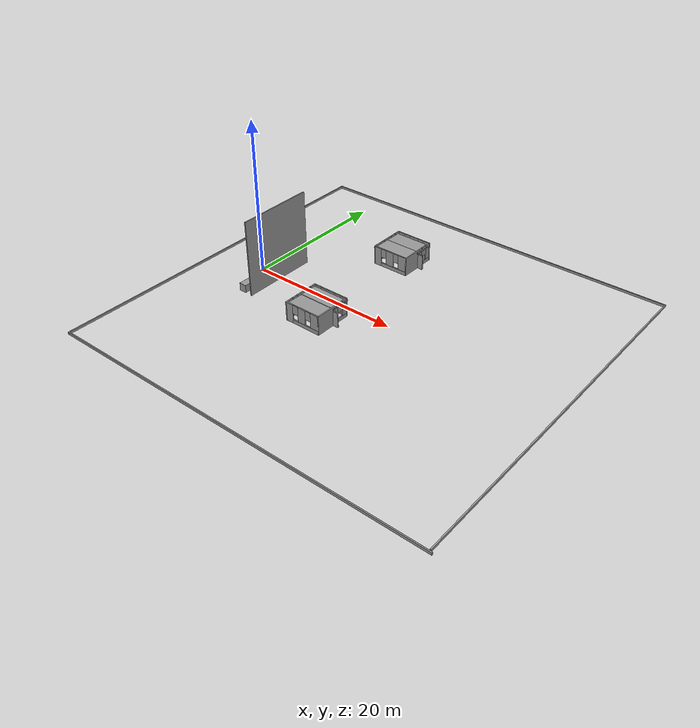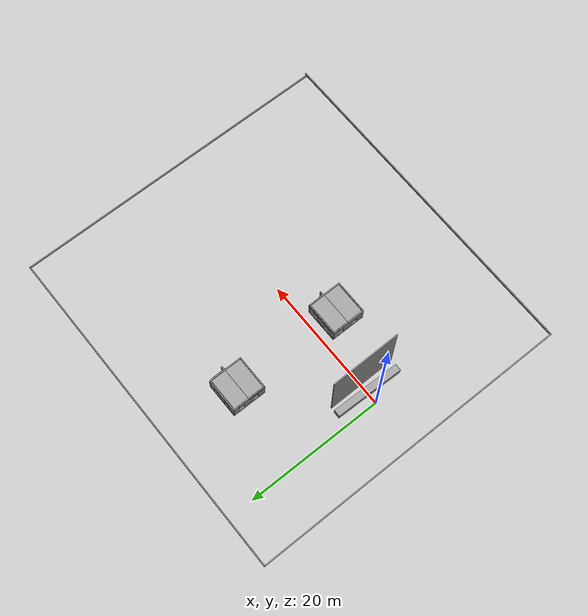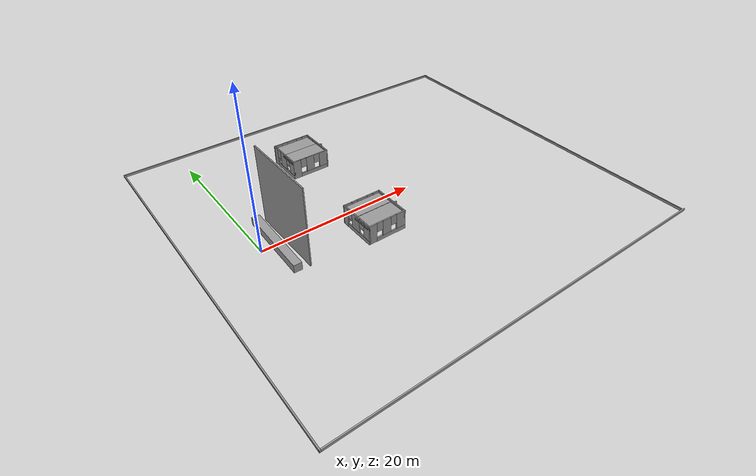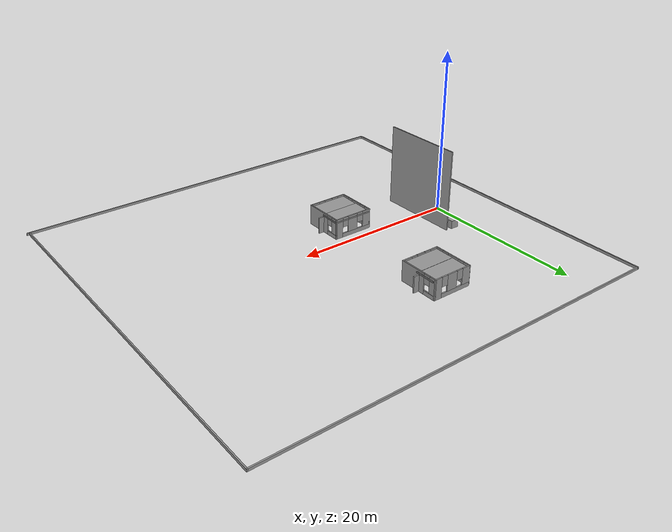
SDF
<sdf version="1.7">
 <world name="default">
  <model name="ground_plane">
   <static>1</static>
   <link name="link">
    <collision name="collision">
     <geometry><plane><normal>0 0 1</normal><size>5000 5000</size></plane></geometry>
     <surface><friction><ode><mu>100</mu><mu2>50</mu2></ode></friction></surface>
    </collision>
   </link>
  </model>
  <model name="wall50m">
   <pose>17.9974 0.0206 0 0 -0 0</pose>
   <link name="Wall_4">
    <collision name="Wall_4_Collision">
     <geometry><box><size>50.5 0.15 0.3</size></box></geometry>
     <pose>0 0 0.15 0 -0 0</pose>
    </collision>
    <visual name="Wall_4_Visual">
     <pose>0 0 0.15 0 -0 0</pose>
     <geometry><box><size>50.5 0.15 0.3</size></box></geometry>
     <material>
      <script><uri>file://media/materials/scripts/gazebo.material</uri><name>Gazebo/Grey</name></script>
      <ambient>1 1 1 1</ambient>
     </material>
     <meta><layer>0</layer></meta>
    </visual>
    <pose>2e-06 -23.675 0 0 -0 3.14159</pose>
   </link>
   <link name="Wall_5">
    <collision name="Wall_5_Collision">
     <geometry><box><size>47.5 0.15 0.3</size></box></geometry>
     <pose>0 0 0.15 0 -0 0</pose>
    </collision>
    <visual name="Wall_5_Visual">
     <pose>0 0 0.15 0 -0 0</pose>
     <geometry><box><size>47.5 0.15 0.3</size></box></geometry>
     <material>
      <script><uri>file://media/materials/scripts/gazebo.material</uri><name>Gazebo/Grey</name></script>
      <ambient>1 1 1 1</ambient>
     </material>
     <meta><layer>0</layer></meta>
    </visual>
    <pose>-25.175 -0 0 0 -0 1.5708</pose>
   </link>
   <link name="Wall_6">
    <collision name="Wall_6_Collision">
     <geometry><box><size>50.25 0.15 0.3</size></box></geometry>
     <pose>0 0 0.15 0 -0 0</pose>
    </collision>
    <visual name="Wall_6_Visual">
     <pose>0 0 0.15 0 -0 0</pose>
     <geometry><box><size>50.25 0.15 0.3</size></box></geometry>
     <material>
      <script><uri>file://media/materials/scripts/gazebo.material</uri><name>Gazebo/Grey</name></script>
      <ambient>1 1 1 1</ambient>
     </material>
     <meta><layer>0</layer></meta>
    </visual>
    <pose>-0.124998 23.675 0 0 -0 0</pose>
   </link>
   <link name="Wall_7">
    <collision name="Wall_7_Collision">
     <geometry><box><size>47.25 0.15 0.3</size></box></geometry>
     <pose>0 0 0.15 0 -0 0</pose>
    </collision>
    <visual name="Wall_7_Visual">
     <pose>0 0 0.15 0 -0 0</pose>
     <geometry><box><size>47.25 0.15 0.3</size></box></geometry>
     <material>
      <script><uri>file://media/materials/scripts/gazebo.material</uri><name>Gazebo/Grey</name></script>
      <ambient>1 1 1 1</ambient>
     </material>
     <meta><layer>0</layer></meta>
    </visual>
    <pose>24.925 0.125 0 0 -0 -1.5708</pose>
   </link>
   <static>1</static>
  </model>
  <model name="wall10m">
   <pose>3.10185 -0.181993 0 0 0 -1.56343</pose>
   <link name="Wall_0">
    <collision name="Wall_0_Collision">
     <geometry><box><size>10 0.15 10</size></box></geometry>
     <pose>0 0 5 0 -0 0</pose>
    </collision>
    <visual name="Wall_0_Visual">
     <pose>0 0 5 0 -0 0</pose>
     <geometry><box><size>10 0.15 10</size></box></geometry>
     <material>
      <script><uri>file://media/materials/scripts/gazebo.material</uri><name>Gazebo/Grey</name></script>
      <ambient>1 1 1 1</ambient>
     </material>
     <meta><layer>0</layer></meta>
    </visual>
   </link>
   <static>1</static>
  </model>
  <model name="Pacel_stand">
   <link name="link">
    <inertial>
     <mass>18.9585</mass>
     <inertia><ixx>3.15974</ixx><ixy>0</ixy><ixz>0</ixz><iyy>569.422</iyy><iyz>0</iyz><izz>569.422</izz></inertia>
    </inertial>
    <pose>4.44827 0.008738 0 0 -0 0</pose>
    <visual name="visual">
     <geometry><box><size>10 1 1</size></box></geometry>
     <material>
      <script><name>Gazebo/Grey</name><uri>file://media/materials/scripts/gazebo.material</uri></script>
      <shader type="vertex"><normal_map>__default__</normal_map></shader>
      <ambient>0.3 0.3 0.3 1</ambient>
      <diffuse>0.7 0.7 0.7 1</diffuse>
      <specular>0.01 0.01 0.01 1</specular>
      <emissive>0 0 0 1</emissive>
     </material>
    </visual>
    <collision name="collision">
     <geometry><box><size>9.99997 1 1</size></box></geometry>
     <surface>
      <friction>
       <ode><mu>1</mu><mu2>1</mu2><fdir1>0 0 0</fdir1><slip1>0</slip1><slip2>0</slip2></ode>
       <torsional>
        <coefficient>1</coefficient>
        <patch_radius>0</patch_radius>
        <surface_radius>0</surface_radius>
        <use_patch_radius>1</use_patch_radius>
        <ode><slip>0</slip></ode>
       </torsional>
      </friction>
      <bounce><restitution_coefficient>0</restitution_coefficient><threshold>1e+06</threshold></bounce>
      <contact>
       <collide_without_contact>0</collide_without_contact>
       <collide_without_contact_bitmask>1</collide_without_contact_bitmask>
       <collide_bitmask>1</collide_bitmask>
       <ode>
        <soft_cfm>0</soft_cfm>
        <soft_erp>0.2</soft_erp>
        <kp>1e+13</kp>
        <kd>1</kd>
        <max_vel>0.01</max_vel>
        <min_depth>0</min_depth>
       </ode>
       <bullet>
        <split_impulse>1</split_impulse>
        <split_impulse_penetration_threshold>-0.01</split_impulse_penetration_threshold>
        <soft_cfm>0</soft_cfm>
        <soft_erp>0.2</soft_erp>
        <kp>1e+13</kp>
        <kd>1</kd>
       </bullet>
      </contact>
     </surface>
    </collision>
   </link>
   <static>0</static>
   <pose>1.87633 4.35864 0.5 0 0 -1.592</pose>
  </model>
  <model name="House">
   <pose>12.4099 12.5509 0 0 -0 0</pose>
   <link name="Door_0">
    <collision name="Door_0_Collision">
     <geometry><box><size>0.9 0.17 2</size></box></geometry>
     <pose>0 0 1 0 -0 0</pose>
    </collision>
    <visual name="Door_0_Visual">
     <pose>0 0 1 0 -0 0</pose>
     <geometry><box><size>0.9 0.17 2</size></box></geometry>
     <material>
      <script><uri>file://media/materials/scripts/gazebo.material</uri><name>Gazebo/Grey</name></script>
     </material>
    </visual>
    <pose>2.72267 0.051323 0 0 -0 0</pose>
   </link>
   <link name="Wall_2">
    <pose>0 2.425 0 0 -0 3.14159</pose>
    <visual name="Wall_2_Visual_0">
     <pose>-2.01333 0 1.25 0 -0 0</pose>
     <geometry><box><size>0.973339 0.15 2.5</size></box></geometry>
     <material>
      <script><uri>file://media/materials/scripts/gazebo.material</uri><name>Gazebo/Grey</name></script>
      <ambient>1 1 1 1</ambient>
     </material>
     <meta><layer>0</layer></meta>
    </visual>
    <collision name="Wall_2_Collision_0">
     <geometry><box><size>0.973339 0.15 2.5</size></box></geometry>
     <pose>-2.01333 0 1.25 0 -0 0</pose>
    </collision>
    <visual name="Wall_2_Visual_1">
     <pose>0.48667 0 0.25 0 -0 0</pose>
     <geometry><box><size>4.02666 0.15 0.5</size></box></geometry>
     <material>
      <script><uri>file://media/materials/scripts/gazebo.material</uri><name>Gazebo/Grey</name></script>
      <ambient>1 1 1 1</ambient>
     </material>
     <meta><layer>0</layer></meta>
    </visual>
    <collision name="Wall_2_Collision_1">
     <geometry><box><size>4.02666 0.15 0.5</size></box></geometry>
     <pose>0.48667 0 0.25 0 -0 0</pose>
    </collision>
    <visual name="Wall_2_Visual_2">
     <pose>-0.062653 0 1.5 0 -0 0</pose>
     <geometry><box><size>1.32802 0.15 2</size></box></geometry>
     <material>
      <script><uri>file://media/materials/scripts/gazebo.material</uri><name>Gazebo/Grey</name></script>
      <ambient>1 1 1 1</ambient>
     </material>
     <meta><layer>0</layer></meta>
    </visual>
    <collision name="Wall_2_Collision_2">
     <geometry><box><size>1.32802 0.15 2</size></box></geometry>
     <pose>-0.062653 0 1.5 0 -0 0</pose>
    </collision>
    <visual name="Wall_2_Visual_3">
     <pose>1.95068 0 1.5 0 -0 0</pose>
     <geometry><box><size>1.09865 0.15 2</size></box></geometry>
     <material>
      <script><uri>file://media/materials/scripts/gazebo.material</uri><name>Gazebo/Grey</name></script>
      <ambient>1 1 1 1</ambient>
     </material>
     <meta><layer>0</layer></meta>
    </visual>
    <collision name="Wall_2_Collision_3">
     <geometry><box><size>1.09865 0.15 2</size></box></geometry>
     <pose>1.95068 0 1.5 0 -0 0</pose>
    </collision>
    <visual name="Wall_2_Visual_4">
     <pose>-1.12666 0 1.9 0 -0 0</pose>
     <geometry><box><size>0.8 0.15 1.2</size></box></geometry>
     <material>
      <script><uri>file://media/materials/scripts/gazebo.material</uri><name>Gazebo/Grey</name></script>
      <ambient>1 1 1 1</ambient>
     </material>
     <meta><layer>0</layer></meta>
    </visual>
    <collision name="Wall_2_Collision_4">
     <geometry><box><size>0.8 0.15 1.2</size></box></geometry>
     <pose>-1.12666 0 1.9 0 -0 0</pose>
    </collision>
    <visual name="Wall_2_Visual_5">
     <pose>1.00135 0 1.9 0 -0 0</pose>
     <geometry><box><size>0.8 0.15 1.2</size></box></geometry>
     <material>
      <script><uri>file://media/materials/scripts/gazebo.material</uri><name>Gazebo/Grey</name></script>
      <ambient>1 1 1 1</ambient>
     </material>
     <meta><layer>0</layer></meta>
    </visual>
    <collision name="Wall_2_Collision_5">
     <geometry><box><size>0.8 0.15 1.2</size></box></geometry>
     <pose>1.00135 0 1.9 0 -0 0</pose>
    </collision>
   </link>
   <link name="Wall_3">
    <pose>-2.425 0 0 0 -0 -1.5708</pose>
    <visual name="Wall_3_Visual_0">
     <pose>-2.06087 0 1.25 0 -0 0</pose>
     <geometry><box><size>0.878268 0.15 2.5</size></box></geometry>
     <material>
      <script><uri>file://media/materials/scripts/gazebo.material</uri><name>Gazebo/Grey</name></script>
      <ambient>1 1 1 1</ambient>
     </material>
     <meta><layer>0</layer></meta>
    </visual>
    <collision name="Wall_3_Collision_0">
     <geometry><box><size>0.878268 0.15 2.5</size></box></geometry>
     <pose>-2.06087 0 1.25 0 -0 0</pose>
    </collision>
    <visual name="Wall_3_Visual_1">
     <pose>0.439134 0 0.25 0 -0 0</pose>
     <geometry><box><size>4.12173 0.15 0.5</size></box></geometry>
     <material>
      <script><uri>file://media/materials/scripts/gazebo.material</uri><name>Gazebo/Grey</name></script>
      <ambient>1 1 1 1</ambient>
     </material>
     <meta><layer>0</layer></meta>
    </visual>
    <collision name="Wall_3_Collision_1">
     <geometry><box><size>4.12173 0.15 0.5</size></box></geometry>
     <pose>0.439134 0 0.25 0 -0 0</pose>
    </collision>
    <visual name="Wall_3_Visual_2">
     <pose>-0.091224 0 1.5 0 -0 0</pose>
     <geometry><box><size>1.46102 0.15 2</size></box></geometry>
     <material>
      <script><uri>file://media/materials/scripts/gazebo.material</uri><name>Gazebo/Grey</name></script>
      <ambient>1 1 1 1</ambient>
     </material>
     <meta><layer>0</layer></meta>
    </visual>
    <collision name="Wall_3_Collision_2">
     <geometry><box><size>1.46102 0.15 2</size></box></geometry>
     <pose>-0.091224 0 1.5 0 -0 0</pose>
    </collision>
    <visual name="Wall_3_Visual_3">
     <pose>1.96964 0 1.5 0 -0 0</pose>
     <geometry><box><size>1.06072 0.15 2</size></box></geometry>
     <material>
      <script><uri>file://media/materials/scripts/gazebo.material</uri><name>Gazebo/Grey</name></script>
      <ambient>1 1 1 1</ambient>
     </material>
     <meta><layer>0</layer></meta>
    </visual>
    <collision name="Wall_3_Collision_3">
     <geometry><box><size>1.06072 0.15 2</size></box></geometry>
     <pose>1.96964 0 1.5 0 -0 0</pose>
    </collision>
    <visual name="Wall_3_Visual_4">
     <pose>-1.22173 0 1.9 0 -0 0</pose>
     <geometry><box><size>0.8 0.15 1.2</size></box></geometry>
     <material>
      <script><uri>file://media/materials/scripts/gazebo.material</uri><name>Gazebo/Grey</name></script>
      <ambient>1 1 1 1</ambient>
     </material>
     <meta><layer>0</layer></meta>
    </visual>
    <collision name="Wall_3_Collision_4">
     <geometry><box><size>0.8 0.15 1.2</size></box></geometry>
     <pose>-1.22173 0 1.9 0 -0 0</pose>
    </collision>
    <visual name="Wall_3_Visual_5">
     <pose>1.03929 0 1.9 0 -0 0</pose>
     <geometry><box><size>0.8 0.15 1.2</size></box></geometry>
     <material>
      <script><uri>file://media/materials/scripts/gazebo.material</uri><name>Gazebo/Grey</name></script>
      <ambient>1 1 1 1</ambient>
     </material>
     <meta><layer>0</layer></meta>
    </visual>
    <collision name="Wall_3_Collision_5">
     <geometry><box><size>0.8 0.15 1.2</size></box></geometry>
     <pose>1.03929 0 1.9 0 -0 0</pose>
    </collision>
   </link>
   <link name="Wall_4">
    <pose>0 -2.425 0 0 -0 0</pose>
    <visual name="Wall_4_Visual_0">
     <pose>-1.96398 0 1.25 0 -0 0</pose>
     <geometry><box><size>1.07204 0.15 2.5</size></box></geometry>
     <material>
      <script><uri>file://media/materials/scripts/gazebo.material</uri><name>Gazebo/Grey</name></script>
      <ambient>1 1 1 1</ambient>
     </material>
     <meta><layer>0</layer></meta>
    </visual>
    <collision name="Wall_4_Collision_0">
     <geometry><box><size>1.07204 0.15 2.5</size></box></geometry>
     <pose>-1.96398 0 1.25 0 -0 0</pose>
    </collision>
    <visual name="Wall_4_Visual_1">
     <pose>0.536022 0 0.25 0 -0 0</pose>
     <geometry><box><size>3.92796 0.15 0.5</size></box></geometry>
     <material>
      <script><uri>file://media/materials/scripts/gazebo.material</uri><name>Gazebo/Grey</name></script>
      <ambient>1 1 1 1</ambient>
     </material>
     <meta><layer>0</layer></meta>
    </visual>
    <collision name="Wall_4_Collision_1">
     <geometry><box><size>3.92796 0.15 0.5</size></box></geometry>
     <pose>0.536022 0 0.25 0 -0 0</pose>
    </collision>
    <visual name="Wall_4_Visual_2">
     <pose>-0.083648 0 1.5 0 -0 0</pose>
     <geometry><box><size>1.08861 0.15 2</size></box></geometry>
     <material>
      <script><uri>file://media/materials/scripts/gazebo.material</uri><name>Gazebo/Grey</name></script>
      <ambient>1 1 1 1</ambient>
     </material>
     <meta><layer>0</layer></meta>
    </visual>
    <collision name="Wall_4_Collision_2">
     <geometry><box><size>1.08861 0.15 2</size></box></geometry>
     <pose>-0.083648 0 1.5 0 -0 0</pose>
    </collision>
    <visual name="Wall_4_Visual_3">
     <pose>1.88033 0 1.5 0 -0 0</pose>
     <geometry><box><size>1.23934 0.15 2</size></box></geometry>
     <material>
      <script><uri>file://media/materials/scripts/gazebo.material</uri><name>Gazebo/Grey</name></script>
      <ambient>1 1 1 1</ambient>
     </material>
     <meta><layer>0</layer></meta>
    </visual>
    <collision name="Wall_4_Collision_3">
     <geometry><box><size>1.23934 0.15 2</size></box></geometry>
     <pose>1.88033 0 1.5 0 -0 0</pose>
    </collision>
    <visual name="Wall_4_Visual_4">
     <pose>-1.02796 0 1.9 0 -0 0</pose>
     <geometry><box><size>0.8 0.15 1.2</size></box></geometry>
     <material>
      <script><uri>file://media/materials/scripts/gazebo.material</uri><name>Gazebo/Grey</name></script>
      <ambient>1 1 1 1</ambient>
     </material>
     <meta><layer>0</layer></meta>
    </visual>
    <collision name="Wall_4_Collision_4">
     <geometry><box><size>0.8 0.15 1.2</size></box></geometry>
     <pose>-1.02796 0 1.9 0 -0 0</pose>
    </collision>
    <visual name="Wall_4_Visual_5">
     <pose>0.860659 0 1.9 0 -0 0</pose>
     <geometry><box><size>0.8 0.15 1.2</size></box></geometry>
     <material>
      <script><uri>file://media/materials/scripts/gazebo.material</uri><name>Gazebo/Grey</name></script>
      <ambient>1 1 1 1</ambient>
     </material>
     <meta><layer>0</layer></meta>
    </visual>
    <collision name="Wall_4_Collision_5">
     <geometry><box><size>0.8 0.15 1.2</size></box></geometry>
     <pose>0.860659 0 1.9 0 -0 0</pose>
    </collision>
   </link>
   <link name="Wall_5">
    <pose>2.425 0 0 0 -0 1.5708</pose>
    <visual name="Wall_5_Visual_0">
     <pose>-0.839134 0 1.25 0 -0 0</pose>
     <geometry><box><size>3.32173 0.15 2.5</size></box></geometry>
     <material>
      <script><uri>file://media/materials/scripts/gazebo.material</uri><name>Gazebo/Grey</name></script>
      <ambient>1 1 1 1</ambient>
     </material>
     <meta><layer>0</layer></meta>
    </visual>
    <collision name="Wall_5_Collision_0">
     <geometry><box><size>3.32173 0.15 2.5</size></box></geometry>
     <pose>-0.839134 0 1.25 0 -0 0</pose>
    </collision>
    <visual name="Wall_5_Visual_1">
     <pose>1.66087 0 0.25 0 -0 0</pose>
     <geometry><box><size>1.67827 0.15 0.5</size></box></geometry>
     <material>
      <script><uri>file://media/materials/scripts/gazebo.material</uri><name>Gazebo/Grey</name></script>
      <ambient>1 1 1 1</ambient>
     </material>
     <meta><layer>0</layer></meta>
    </visual>
    <collision name="Wall_5_Collision_1">
     <geometry><box><size>1.67827 0.15 0.5</size></box></geometry>
     <pose>1.66087 0 0.25 0 -0 0</pose>
    </collision>
    <visual name="Wall_5_Visual_2">
     <pose>2.06087 0 1.5 0 -0 0</pose>
     <geometry><box><size>0.878268 0.15 2</size></box></geometry>
     <material>
      <script><uri>file://media/materials/scripts/gazebo.material</uri><name>Gazebo/Grey</name></script>
      <ambient>1 1 1 1</ambient>
     </material>
     <meta><layer>0</layer></meta>
    </visual>
    <collision name="Wall_5_Collision_2">
     <geometry><box><size>0.878268 0.15 2</size></box></geometry>
     <pose>2.06087 0 1.5 0 -0 0</pose>
    </collision>
    <visual name="Wall_5_Visual_3">
     <pose>1.22173 0 1.9 0 -0 0</pose>
     <geometry><box><size>0.8 0.15 1.2</size></box></geometry>
     <material>
      <script><uri>file://media/materials/scripts/gazebo.material</uri><name>Gazebo/Grey</name></script>
      <ambient>1 1 1 1</ambient>
     </material>
     <meta><layer>0</layer></meta>
    </visual>
    <collision name="Wall_5_Collision_3">
     <geometry><box><size>0.8 0.15 1.2</size></box></geometry>
     <pose>1.22173 0 1.9 0 -0 0</pose>
    </collision>
   </link>
   <static>1</static>
  </model>
  <model name="5m_clone">
   <pose>12.3572 10.0911 2.23803 -1.57239 0 0</pose>
   <link name="Wall_0">
    <collision name="Wall_0_Collision">
     <geometry><box><size>5 0.15 2.5</size></box></geometry>
     <pose>0 0 1.25 0 -0 0</pose>
    </collision>
    <visual name="Wall_0_Visual">
     <pose>0 0 1.25 0 -0 0</pose>
     <geometry><box><size>5 0.15 2.5</size></box></geometry>
     <material>
      <script><uri>file://media/materials/scripts/gazebo.material</uri><name>Gazebo/Grey</name></script>
      <ambient>1 1 1 1</ambient>
     </material>
     <meta><layer>0</layer></meta>
    </visual>
   </link>
   <static>1</static>
  </model>
  <model name="House_1">
   <pose>12.4567 -3.69962 0 0 -0 0</pose>
   <link name="Door_0">
    <collision name="Door_0_Collision">
     <geometry><box><size>0.9 0.17 2</size></box></geometry>
     <pose>0 0 1 0 -0 0</pose>
    </collision>
    <visual name="Door_0_Visual">
     <pose>0 0 1 0 -0 0</pose>
     <geometry><box><size>0.9 0.17 2</size></box></geometry>
     <material>
      <script><uri>file://media/materials/scripts/gazebo.material</uri><name>Gazebo/Grey</name></script>
     </material>
    </visual>
    <pose>2.72267 0.051323 0 0 -0 0</pose>
   </link>
   <link name="Wall_2">
    <pose>0 2.425 0 0 -0 3.14159</pose>
    <visual name="Wall_2_Visual_0">
     <pose>-2.01333 0 1.25 0 -0 0</pose>
     <geometry><box><size>0.973339 0.15 2.5</size></box></geometry>
     <material>
      <script><uri>file://media/materials/scripts/gazebo.material</uri><name>Gazebo/Grey</name></script>
      <ambient>1 1 1 1</ambient>
     </material>
     <meta><layer>0</layer></meta>
    </visual>
    <collision name="Wall_2_Collision_0">
     <geometry><box><size>0.973339 0.15 2.5</size></box></geometry>
     <pose>-2.01333 0 1.25 0 -0 0</pose>
    </collision>
    <visual name="Wall_2_Visual_1">
     <pose>0.48667 0 0.25 0 -0 0</pose>
     <geometry><box><size>4.02666 0.15 0.5</size></box></geometry>
     <material>
      <script><uri>file://media/materials/scripts/gazebo.material</uri><name>Gazebo/Grey</name></script>
      <ambient>1 1 1 1</ambient>
     </material>
     <meta><layer>0</layer></meta>
    </visual>
    <collision name="Wall_2_Collision_1">
     <geometry><box><size>4.02666 0.15 0.5</size></box></geometry>
     <pose>0.48667 0 0.25 0 -0 0</pose>
    </collision>
    <visual name="Wall_2_Visual_2">
     <pose>-0.062653 0 1.5 0 -0 0</pose>
     <geometry><box><size>1.32802 0.15 2</size></box></geometry>
     <material>
      <script><uri>file://media/materials/scripts/gazebo.material</uri><name>Gazebo/Grey</name></script>
      <ambient>1 1 1 1</ambient>
     </material>
     <meta><layer>0</layer></meta>
    </visual>
    <collision name="Wall_2_Collision_2">
     <geometry><box><size>1.32802 0.15 2</size></box></geometry>
     <pose>-0.062653 0 1.5 0 -0 0</pose>
    </collision>
    <visual name="Wall_2_Visual_3">
     <pose>1.95068 0 1.5 0 -0 0</pose>
     <geometry><box><size>1.09865 0.15 2</size></box></geometry>
     <material>
      <script><uri>file://media/materials/scripts/gazebo.material</uri><name>Gazebo/Grey</name></script>
      <ambient>1 1 1 1</ambient>
     </material>
     <meta><layer>0</layer></meta>
    </visual>
    <collision name="Wall_2_Collision_3">
     <geometry><box><size>1.09865 0.15 2</size></box></geometry>
     <pose>1.95068 0 1.5 0 -0 0</pose>
    </collision>
    <visual name="Wall_2_Visual_4">
     <pose>-1.12666 0 1.9 0 -0 0</pose>
     <geometry><box><size>0.8 0.15 1.2</size></box></geometry>
     <material>
      <script><uri>file://media/materials/scripts/gazebo.material</uri><name>Gazebo/Grey</name></script>
      <ambient>1 1 1 1</ambient>
     </material>
     <meta><layer>0</layer></meta>
    </visual>
    <collision name="Wall_2_Collision_4">
     <geometry><box><size>0.8 0.15 1.2</size></box></geometry>
     <pose>-1.12666 0 1.9 0 -0 0</pose>
    </collision>
    <visual name="Wall_2_Visual_5">
     <pose>1.00135 0 1.9 0 -0 0</pose>
     <geometry><box><size>0.8 0.15 1.2</size></box></geometry>
     <material>
      <script><uri>file://media/materials/scripts/gazebo.material</uri><name>Gazebo/Grey</name></script>
      <ambient>1 1 1 1</ambient>
     </material>
     <meta><layer>0</layer></meta>
    </visual>
    <collision name="Wall_2_Collision_5">
     <geometry><box><size>0.8 0.15 1.2</size></box></geometry>
     <pose>1.00135 0 1.9 0 -0 0</pose>
    </collision>
   </link>
   <link name="Wall_3">
    <pose>-2.425 0 0 0 -0 -1.5708</pose>
    <visual name="Wall_3_Visual_0">
     <pose>-2.06087 0 1.25 0 -0 0</pose>
     <geometry><box><size>0.878268 0.15 2.5</size></box></geometry>
     <material>
      <script><uri>file://media/materials/scripts/gazebo.material</uri><name>Gazebo/Grey</name></script>
      <ambient>1 1 1 1</ambient>
     </material>
     <meta><layer>0</layer></meta>
    </visual>
    <collision name="Wall_3_Collision_0">
     <geometry><box><size>0.878268 0.15 2.5</size></box></geometry>
     <pose>-2.06087 0 1.25 0 -0 0</pose>
    </collision>
    <visual name="Wall_3_Visual_1">
     <pose>0.439134 0 0.25 0 -0 0</pose>
     <geometry><box><size>4.12173 0.15 0.5</size></box></geometry>
     <material>
      <script><uri>file://media/materials/scripts/gazebo.material</uri><name>Gazebo/Grey</name></script>
      <ambient>1 1 1 1</ambient>
     </material>
     <meta><layer>0</layer></meta>
    </visual>
    <collision name="Wall_3_Collision_1">
     <geometry><box><size>4.12173 0.15 0.5</size></box></geometry>
     <pose>0.439134 0 0.25 0 -0 0</pose>
    </collision>
    <visual name="Wall_3_Visual_2">
     <pose>-0.091224 0 1.5 0 -0 0</pose>
     <geometry><box><size>1.46102 0.15 2</size></box></geometry>
     <material>
      <script><uri>file://media/materials/scripts/gazebo.material</uri><name>Gazebo/Grey</name></script>
      <ambient>1 1 1 1</ambient>
     </material>
     <meta><layer>0</layer></meta>
    </visual>
    <collision name="Wall_3_Collision_2">
     <geometry><box><size>1.46102 0.15 2</size></box></geometry>
     <pose>-0.091224 0 1.5 0 -0 0</pose>
    </collision>
    <visual name="Wall_3_Visual_3">
     <pose>1.96964 0 1.5 0 -0 0</pose>
     <geometry><box><size>1.06072 0.15 2</size></box></geometry>
     <material>
      <script><uri>file://media/materials/scripts/gazebo.material</uri><name>Gazebo/Grey</name></script>
      <ambient>1 1 1 1</ambient>
     </material>
     <meta><layer>0</layer></meta>
    </visual>
    <collision name="Wall_3_Collision_3">
     <geometry><box><size>1.06072 0.15 2</size></box></geometry>
     <pose>1.96964 0 1.5 0 -0 0</pose>
    </collision>
    <visual name="Wall_3_Visual_4">
     <pose>-1.22173 0 1.9 0 -0 0</pose>
     <geometry><box><size>0.8 0.15 1.2</size></box></geometry>
     <material>
      <script><uri>file://media/materials/scripts/gazebo.material</uri><name>Gazebo/Grey</name></script>
      <ambient>1 1 1 1</ambient>
     </material>
     <meta><layer>0</layer></meta>
    </visual>
    <collision name="Wall_3_Collision_4">
     <geometry><box><size>0.8 0.15 1.2</size></box></geometry>
     <pose>-1.22173 0 1.9 0 -0 0</pose>
    </collision>
    <visual name="Wall_3_Visual_5">
     <pose>1.03929 0 1.9 0 -0 0</pose>
     <geometry><box><size>0.8 0.15 1.2</size></box></geometry>
     <material>
      <script><uri>file://media/materials/scripts/gazebo.material</uri><name>Gazebo/Grey</name></script>
      <ambient>1 1 1 1</ambient>
     </material>
     <meta><layer>0</layer></meta>
    </visual>
    <collision name="Wall_3_Collision_5">
     <geometry><box><size>0.8 0.15 1.2</size></box></geometry>
     <pose>1.03929 0 1.9 0 -0 0</pose>
    </collision>
   </link>
   <link name="Wall_4">
    <pose>0 -2.425 0 0 -0 0</pose>
    <visual name="Wall_4_Visual_0">
     <pose>-1.96398 0 1.25 0 -0 0</pose>
     <geometry><box><size>1.07204 0.15 2.5</size></box></geometry>
     <material>
      <script><uri>file://media/materials/scripts/gazebo.material</uri><name>Gazebo/Grey</name></script>
      <ambient>1 1 1 1</ambient>
     </material>
     <meta><layer>0</layer></meta>
    </visual>
    <collision name="Wall_4_Collision_0">
     <geometry><box><size>1.07204 0.15 2.5</size></box></geometry>
     <pose>-1.96398 0 1.25 0 -0 0</pose>
    </collision>
    <visual name="Wall_4_Visual_1">
     <pose>0.536022 0 0.25 0 -0 0</pose>
     <geometry><box><size>3.92796 0.15 0.5</size></box></geometry>
     <material>
      <script><uri>file://media/materials/scripts/gazebo.material</uri><name>Gazebo/Grey</name></script>
      <ambient>1 1 1 1</ambient>
     </material>
     <meta><layer>0</layer></meta>
    </visual>
    <collision name="Wall_4_Collision_1">
     <geometry><box><size>3.92796 0.15 0.5</size></box></geometry>
     <pose>0.536022 0 0.25 0 -0 0</pose>
    </collision>
    <visual name="Wall_4_Visual_2">
     <pose>-0.083648 0 1.5 0 -0 0</pose>
     <geometry><box><size>1.08861 0.15 2</size></box></geometry>
     <material>
      <script><uri>file://media/materials/scripts/gazebo.material</uri><name>Gazebo/Grey</name></script>
      <ambient>1 1 1 1</ambient>
     </material>
     <meta><layer>0</layer></meta>
    </visual>
    <collision name="Wall_4_Collision_2">
     <geometry><box><size>1.08861 0.15 2</size></box></geometry>
     <pose>-0.083648 0 1.5 0 -0 0</pose>
    </collision>
    <visual name="Wall_4_Visual_3">
     <pose>1.88033 0 1.5 0 -0 0</pose>
     <geometry><box><size>1.23934 0.15 2</size></box></geometry>
     <material>
      <script><uri>file://media/materials/scripts/gazebo.material</uri><name>Gazebo/Grey</name></script>
      <ambient>1 1 1 1</ambient>
     </material>
     <meta><layer>0</layer></meta>
    </visual>
    <collision name="Wall_4_Collision_3">
     <geometry><box><size>1.23934 0.15 2</size></box></geometry>
     <pose>1.88033 0 1.5 0 -0 0</pose>
    </collision>
    <visual name="Wall_4_Visual_4">
     <pose>-1.02796 0 1.9 0 -0 0</pose>
     <geometry><box><size>0.8 0.15 1.2</size></box></geometry>
     <material>
      <script><uri>file://media/materials/scripts/gazebo.material</uri><name>Gazebo/Grey</name></script>
      <ambient>1 1 1 1</ambient>
     </material>
     <meta><layer>0</layer></meta>
    </visual>
    <collision name="Wall_4_Collision_4">
     <geometry><box><size>0.8 0.15 1.2</size></box></geometry>
     <pose>-1.02796 0 1.9 0 -0 0</pose>
    </collision>
    <visual name="Wall_4_Visual_5">
     <pose>0.860659 0 1.9 0 -0 0</pose>
     <geometry><box><size>0.8 0.15 1.2</size></box></geometry>
     <material>
      <script><uri>file://media/materials/scripts/gazebo.material</uri><name>Gazebo/Grey</name></script>
      <ambient>1 1 1 1</ambient>
     </material>
     <meta><layer>0</layer></meta>
    </visual>
    <collision name="Wall_4_Collision_5">
     <geometry><box><size>0.8 0.15 1.2</size></box></geometry>
     <pose>0.860659 0 1.9 0 -0 0</pose>
    </collision>
   </link>
   <link name="Wall_5">
    <pose>2.425 0 0 0 -0 1.5708</pose>
    <visual name="Wall_5_Visual_0">
     <pose>-0.839134 0 1.25 0 -0 0</pose>
     <geometry><box><size>3.32173 0.15 2.5</size></box></geometry>
     <material>
      <script><uri>file://media/materials/scripts/gazebo.material</uri><name>Gazebo/Grey</name></script>
      <ambient>1 1 1 1</ambient>
     </material>
     <meta><layer>0</layer></meta>
    </visual>
    <collision name="Wall_5_Collision_0">
     <geometry><box><size>3.32173 0.15 2.5</size></box></geometry>
     <pose>-0.839134 0 1.25 0 -0 0</pose>
    </collision>
    <visual name="Wall_5_Visual_1">
     <pose>1.66087 0 0.25 0 -0 0</pose>
     <geometry><box><size>1.67827 0.15 0.5</size></box></geometry>
     <material>
      <script><uri>file://media/materials/scripts/gazebo.material</uri><name>Gazebo/Grey</name></script>
      <ambient>1 1 1 1</ambient>
     </material>
     <meta><layer>0</layer></meta>
    </visual>
    <collision name="Wall_5_Collision_1">
     <geometry><box><size>1.67827 0.15 0.5</size></box></geometry>
     <pose>1.66087 0 0.25 0 -0 0</pose>
    </collision>
    <visual name="Wall_5_Visual_2">
     <pose>2.06087 0 1.5 0 -0 0</pose>
     <geometry><box><size>0.878268 0.15 2</size></box></geometry>
     <material>
      <script><uri>file://media/materials/scripts/gazebo.material</uri><name>Gazebo/Grey</name></script>
      <ambient>1 1 1 1</ambient>
     </material>
     <meta><layer>0</layer></meta>
    </visual>
    <collision name="Wall_5_Collision_2">
     <geometry><box><size>0.878268 0.15 2</size></box></geometry>
     <pose>2.06087 0 1.5 0 -0 0</pose>
    </collision>
    <visual name="Wall_5_Visual_3">
     <pose>1.22173 0 1.9 0 -0 0</pose>
     <geometry><box><size>0.8 0.15 1.2</size></box></geometry>
     <material>
      <script><uri>file://media/materials/scripts/gazebo.material</uri><name>Gazebo/Grey</name></script>
      <ambient>1 1 1 1</ambient>
     </material>
     <meta><layer>0</layer></meta>
    </visual>
    <collision name="Wall_5_Collision_3">
     <geometry><box><size>0.8 0.15 1.2</size></box></geometry>
     <pose>1.22173 0 1.9 0 -0 0</pose>
    </collision>
   </link>
   <static>1</static>
  </model>
  <model name="5m_clone_5">
   <pose>12.5262 14.8116 2.17512 1.55349 -0 0</pose>
   <link name="Wall_0">
    <collision name="Wall_0_Collision">
     <geometry><box><size>5 0.15 2.5</size></box></geometry>
     <pose>0 0 1.25 0 -0 0</pose>
    </collision>
    <visual name="Wall_0_Visual">
     <pose>0 0 1.25 0 -0 0</pose>
     <geometry><box><size>5 0.15 2.5</size></box></geometry>
     <material>
      <script><uri>file://media/materials/scripts/gazebo.material</uri><name>Gazebo/Grey</name></script>
      <ambient>1 1 1 1</ambient>
     </material>
     <meta><layer>0</layer></meta>
    </visual>
   </link>
   <static>1</static>
  </model>
  <model name="5m_clone_6">
   <pose>12.3555 -3.60929 2.17512 1.55349 -0 0</pose>
   <link name="Wall_0">
    <collision name="Wall_0_Collision">
     <geometry><box><size>5 0.15 2.5</size></box></geometry>
     <pose>0 0 1.25 0 -0 0</pose>
    </collision>
    <visual name="Wall_0_Visual">
     <pose>0 0 1.25 0 -0 0</pose>
     <geometry><box><size>5 0.15 2.5</size></box></geometry>
     <material>
      <script><uri>file://media/materials/scripts/gazebo.material</uri><name>Gazebo/Grey</name></script>
      <ambient>1 1 1 1</ambient>
     </material>
     <meta><layer>0</layer></meta>
    </visual>
   </link>
   <static>1</static>
  </model>
  <model name="5m_clone_7">
   <pose>12.5298 -1.16159 2.17512 1.55349 -0 0</pose>
   <link name="Wall_0">
    <collision name="Wall_0_Collision">
     <geometry><box><size>5 0.15 2.5</size></box></geometry>
     <pose>0 0 1.25 0 -0 0</pose>
    </collision>
    <visual name="Wall_0_Visual">
     <pose>0 0 1.25 0 -0 0</pose>
     <geometry><box><size>5 0.15 2.5</size></box></geometry>
     <material>
      <script><uri>file://media/materials/scripts/gazebo.material</uri><name>Gazebo/Grey</name></script>
      <ambient>1 1 1 1</ambient>
     </material>
     <meta><layer>0</layer></meta>
    </visual>
   </link>
   <static>1</static>
  </model>
 </world>
</sdf>
